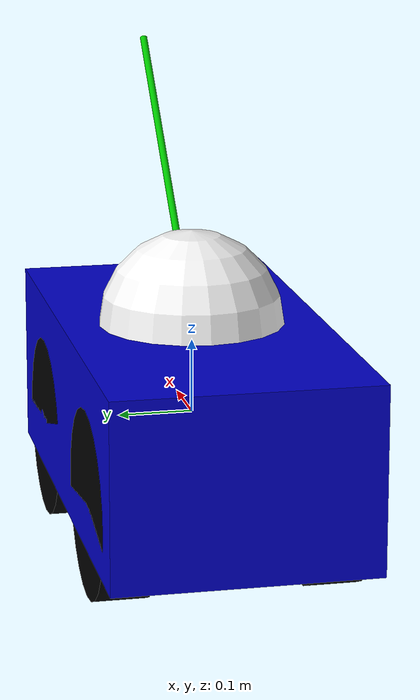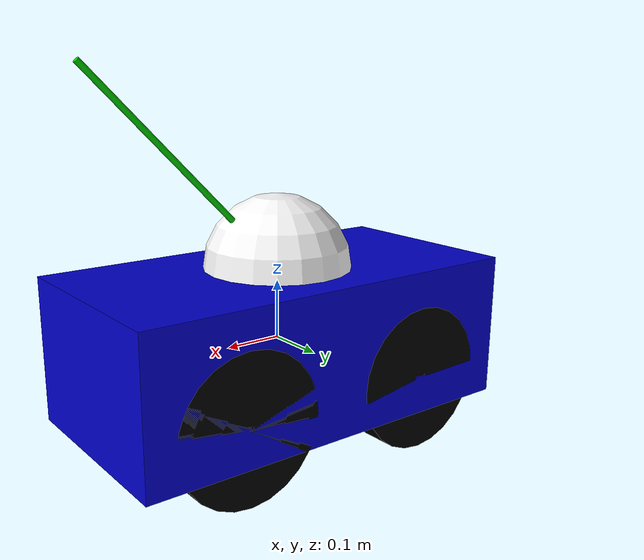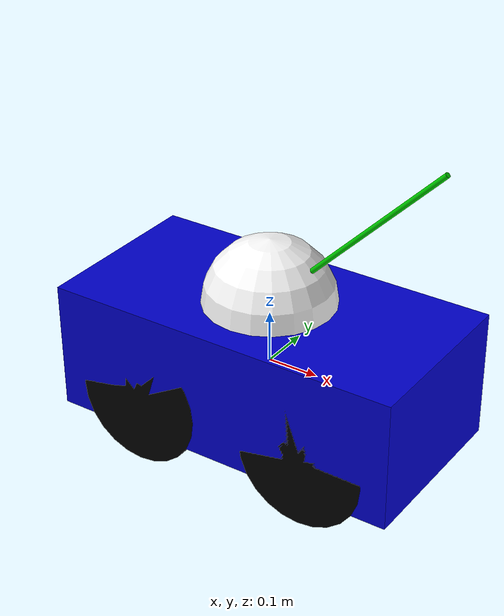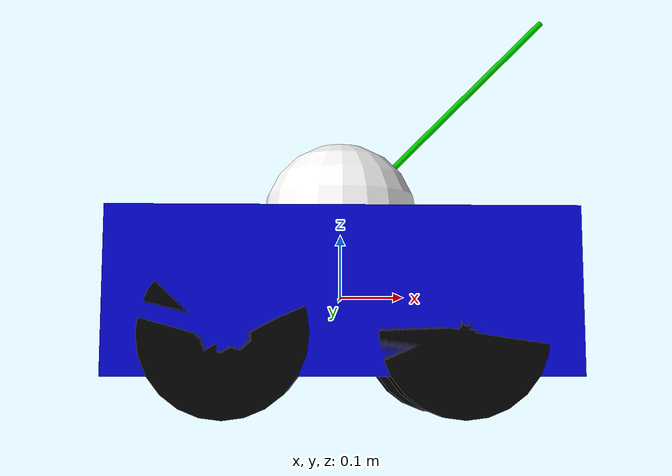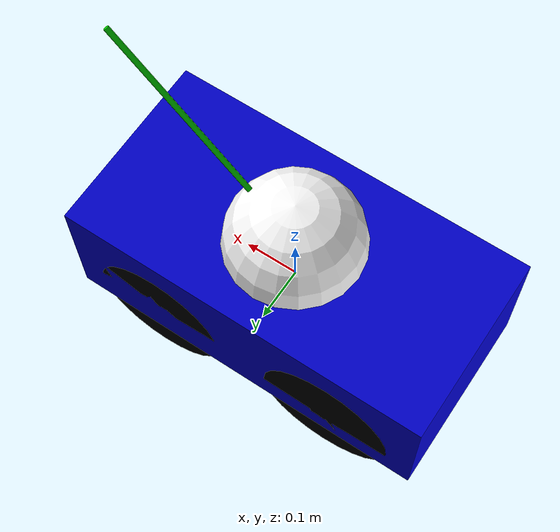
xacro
<?xml version="1.0"?>
<robot xmlns:xacro="http://www.ros.org/wiki/xacro" name="mytank">
    <material name="blue">
        <color rgba="0.0 0.0 0.8 1.0"/>
    </material>
    <material name="white">
        <color rgba="1.0 1.0 1.0 1.0"/>
    </material>
    <material name="red">
        <color rgba="0.8 0.0 0.0 1.0"/>
    </material>

    <material name="green">
        <color rgba="0.0 0.8 0.0 1.0"/>
    </material>
    <material name="black">
        <color rgba="0.0 0.0 0.0 1.0"/>
    </material>

    <xacro:property name="width" value="0.35"/>
    <xacro:property name="length" value="0.70"/>
    <xacro:property name="height" value="0.25"/>
    <xacro:property name="PI" value="3.14159" />

    <xacro:macro name="sphere_link" params="name radius color *origin">
    <link name="${name}">
        <visual>
            <geometry>
                <sphere radius="${radius}"/>
            </geometry>
            <xacro:insert_block name="origin"/>
            <material name="${color}" />
        </visual>
    </link>
    </xacro:macro>

    <xacro:macro name="cylinder_link" params="name radius length color *origin">
        <link name="${name}">
            <visual>
                <geometry>
                  <cylinder radius="${radius}" length="${length}"/>
                </geometry>
                <xacro:insert_block name="origin"/>
                <material name="${color}" />
            </visual>
        </link>
    </xacro:macro>

    <xacro:macro name="box_link" params="name length width height color *origin">
        <link name="${name}">
            <visual>
                <geometry>
                  <box size="${length} ${width} ${height}" />
                </geometry>
                <xacro:insert_block name="origin"/>
                <material name="${color}" />
            </visual>
        </link>
    </xacro:macro>

    <xacro:macro name="tank_joint" params="name type parent child *joint_origin *joint_axis *joint_limit">
        <joint name="${name}" type="${type}">
            <parent link="${parent}"/>
            <child link="${child}"/>
            <xacro:insert_block name="joint_origin" />
            <xacro:insert_block name="joint_axis" />
            <xacro:insert_block name="joint_limit" />
        </joint>
    </xacro:macro>

    <!--  model  begin-->
    <!--body-->
    <xacro:box_link name="tank_body" length="${length}" width="${width}" height="${height}" color="blue" >
        <origin xyz="0.0 0.0 0.0" rpy="0.0 0.0 0.0"/>
    </xacro:box_link>

    <!--head-->
    <xacro:sphere_link name="tank_head" radius="${height/2}" color="white" >
        <origin xyz="0.0 0.0 0.0" rpy="0.0 0.0 0.0"/>
    </xacro:sphere_link>
    <xacro:tank_joint name="body2head" type="continuous" parent="tank_body" child="tank_head">
        <origin xyz="0.0 0.0 ${height/2}" rpy="0.0 0.0 0.0"/>
        <axis xyz="0.0 0.0 1.0"/>
        <limit lower="0" upper="0" effort="0.0" velocity="0.0"/>>
    </xacro:tank_joint>

    <!-- barrel-->
    <xacro:cylinder_link name="tank_barrel" radius="${height/50}" length="${length/2}" color="green" >
        <origin xyz="0.0 0.0 ${length/2/2}" rpy="0.0 0.0 0.0"/>
    </xacro:cylinder_link>
    <xacro:tank_joint name="head2barrel" type="revolute" parent="tank_head" child="tank_barrel">
        <origin xyz="${sin(PI/4)*(height/2)} 0.0 ${sin(PI/4)*(height/2)}" rpy="0.0 ${PI/4} 0.0"/>
        <axis xyz="0.0 1.0 0.0"/>
        <limit lower="0" upper="${PI/4}" effort="0.0" velocity="12.0"/>
    </xacro:tank_joint>

    <!--right wheel-->
    <xacro:cylinder_link name="tank_right_front_wheel" radius="${height/2}" length="${width/5}" color="black" >
        <origin xyz="0.0 ${width/5/2} 0.0" rpy="${PI/2} 0.0 0.0"/>
    </xacro:cylinder_link>
    <xacro:tank_joint name="body_2_rf_wheel" type="continuous" parent="tank_body" child="tank_right_front_wheel">
        <origin xyz="${length/4} ${-(width/2)} ${-(height/4)}" rpy="0.0 0.0 0.0"/>
        <axis xyz="0.0 1.0 0.0"/>
        <limit lower="0" upper="0" effort="0.0" velocity="12.0"/>
    </xacro:tank_joint>

    <xacro:cylinder_link name="tank_right_back_wheel" radius="${height/2}" length="${width/5}" color="black" >
        <origin xyz="0.0 ${width/5/2} 0.0" rpy="${PI/2} 0.0 0.0"/>
    </xacro:cylinder_link>
    <xacro:tank_joint name="body_2_rb_wheel" type="continuous" parent="tank_body" child="tank_right_back_wheel">
        <origin xyz="${-(length/4)} ${-(width/2)} ${-(height/4)}" rpy="0.0 0.0 0.0"/>
        <axis xyz="0.0 1.0 0.0"/>
        <limit lower="0" upper="0" effort="0.0" velocity="12.0"/>
    </xacro:tank_joint>

    <!--left wheel-->
    <xacro:cylinder_link name="tank_left_front_wheel" radius="${height/2}" length="${width/5}" color="black" >
        <origin xyz="0.0 ${-(width/5/2)} 0.0" rpy="${PI/2} 0.0 0.0"/>
    </xacro:cylinder_link>
    <xacro:tank_joint name="body_2_lf_wheel" type="continuous" parent="tank_body" child="tank_left_front_wheel">
        <origin xyz="${length/4} ${width/2} ${-(height/4)}" rpy="0.0 0.0 0.0"/>
        <axis xyz="0.0 1.0 0.0"/>
        <limit lower="0" upper="0" effort="0.0" velocity="12.0"/>
    </xacro:tank_joint>

    <xacro:cylinder_link name="tank_left_back_wheel" radius="${height/2}" length="${width/5}" color="black" >
        <origin xyz="0.0 ${-(width/5/2)} 0.0" rpy="${PI/2} 0.0 0.0"/>
    </xacro:cylinder_link>
    <xacro:tank_joint name="body_2_lb_wheel" type="continuous" parent="tank_body" child="tank_left_back_wheel">
        <origin xyz="${-(length/4)} ${width/2} ${-(height/4)}" rpy="0.0 0.0 0.0"/>
        <axis xyz="0.0 1.0 0.0"/>
        <limit lower="0" upper="0" effort="0.0" velocity="12.0"/>
    </xacro:tank_joint>
</robot>
